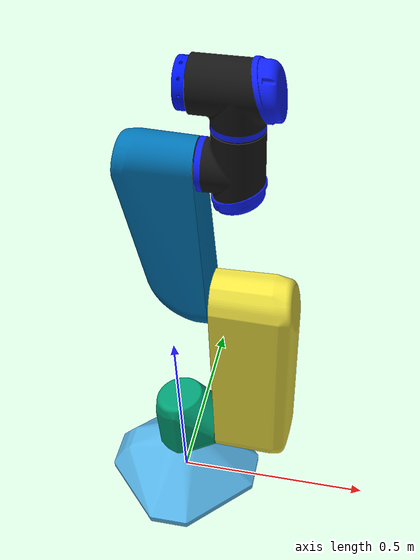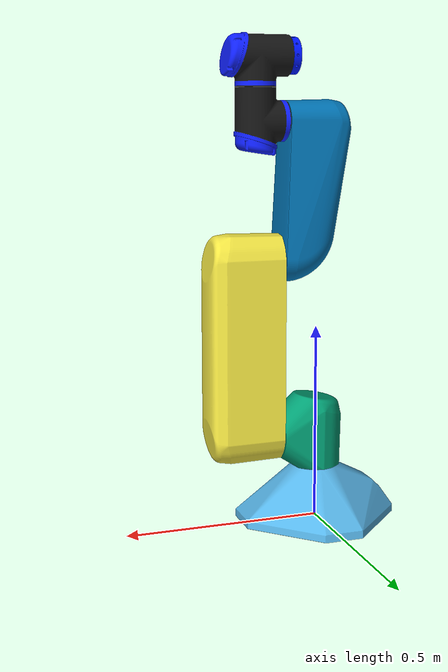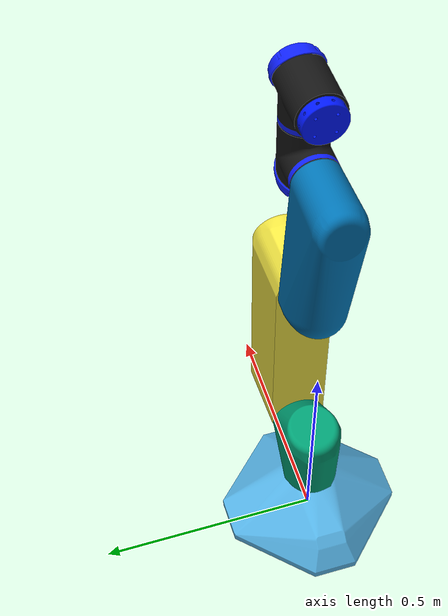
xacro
<?xml version="1.0"?>
<robot xmlns:xacro="http://www.ros.org/wiki/xacro" name="cora">

    <!-- Declare arguments -->
    <xacro:arg name="hardware_type" default="Fake"/>
    <xacro:arg name="gripper_package" default="None"/>
    <xacro:arg name="initial_positions_file" default="initial_positions.yaml"/>

    <!-- Base robot        -->
    <xacro:include filename="$(find cora_description)/urdf/cora.urdf"/>

    <!-- ros2_control      -->

    <!-- Store hardware_type -->
    <xacro:property
        name="hardware_type"
        value="$(arg hardware_type)"/>

    <xacro:if value="${hardware_type != 'Gazebo'}">
        <xacro:include filename="cora.ros2_control.xacro"/>
        <xacro:cora_ros2_control
            name="CoraSystem"
            hardware_type="$(arg hardware_type)"
            initial_positions_file="$(arg initial_positions_file)"/>
    </xacro:if>

    <xacro:if value="${hardware_type == 'Gazebo'}">

        <!-- gazebo ros2 control configuration -->
        <xacro:include filename="cora_gazebo.ros2_control.xacro"/>
        <xacro:cora_gazebo_ros2_control
            initial_positions_file="$(arg initial_positions_file)"/>

        <!-- gazebo sensors and plugins -->
        <xacro:include filename="$(find cora_gazebo)/config/cora_gazebo.xacro"/>
        <xacro:cora_gazebo/>
    </xacro:if>

    <!-- Optional gripper  -->

    <!-- Store gripper package -->
    <xacro:property
        name="gripper_package_name"
        value="$(arg gripper_package)"/>

    <!-- Store gripper package path -->
    <xacro:property
        name="gripper_package_path"
        value="$(find ${gripper_package_name})"/>

    <!-- Only load gripper if one is provided -->
    <xacro:if value="${gripper_package_name != 'None'}">

        <!-- Load gripper macros -->
        <xacro:include filename="${gripper_package_path}/urdf/cora_gripper.urdf.xacro"/>

        <!-- Instantiate gripper -->
        <xacro:cora_gripper_xacro
            hardware_type="$(arg hardware_type)"
            initial_positions_file="$(arg initial_positions_file)"/>

    </xacro:if>
</robot>

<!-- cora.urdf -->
<!--
  Robot: cora
  Generated by: LinkForge v1.2.0
  https://github.com/arounamounchili/linkforge
  Date: 2026-02-19 14:09:21
-->
<robot name="cora">
  <!-- Materials -->
  <material name="baselink_parts_material">
    <color rgba="1 1 1 1" />
  </material>
  <material name="baselink_parts_material_003">
    <color rgba="0.5466 0.5466 0.5466 1" />
  </material>
  <material name="Material_006">
    <color rgba="0.083113 0.083114 0.083114 1" />
  </material>
  <material name="Material_002">
    <color rgba="0.059104 0.128313 1 1" />
  </material>
  <material name="l4_parts_material_002">
    <color rgba="0.082282 0.082283 0.082283 1" />
  </material>
  <material name="l4_parts_material_001">
    <color rgba="0.082282 0.082283 0.082283 1" />
  </material>
  <material name="endeffector_parts_material">
    <color rgba="0 0.093059 1 1" />
  </material>

  <!-- Links -->
  <link name="base_link">
    <inertial>
      <mass value="0" />
      <inertia ixx="0" ixy="0" ixz="0" iyy="0" iyz="0" izz="0" />
    </inertial>
  </link>
  <link name="baselink">
    <visual>
      <origin xyz="0 -0.000004 0.117444" rpy="0 0 0" />
      <geometry>
        <mesh filename="file://$(find cora_description)/meshes/baselink_visual.dae" />
      </geometry>
    </visual>
    <collision>
      <geometry>
        <mesh filename="file://$(find cora_description)/meshes/baselink_collision.stl" />
      </geometry>
    </collision>
    <inertial>
      <origin xyz="0 -0.000004 0.117444" rpy="0 0 0" />
      <mass value="0.24516" />
      <inertia ixx="0.001884" ixy="0" ixz="0.000024" iyy="0.001994" iyz="0" izz="0.00332" />
    </inertial>
  </link>
  <link name="l1">
    <visual>
      <origin xyz="0.019193 0.011081 -0.081454" rpy="3.14159 0.000001 0.523599" />
      <geometry>
        <mesh filename="file://$(find cora_description)/meshes/l1_visual.dae" />
      </geometry>
    </visual>
    <collision>
      <geometry>
        <mesh filename="file://$(find cora_description)/meshes/l1_collision.stl" />
      </geometry>
    </collision>
    <inertial>
      <origin xyz="0.019193 0.011081 -0.081454" rpy="0 0 0" />
      <mass value="0.953925" />
      <inertia ixx="0.003494" ixy="-0.000279" ixz="0.000037" iyy="0.003816" iyz="0.000021" izz="0.002734" />
    </inertial>
  </link>
  <link name="l2">
    <visual>
      <origin xyz="0.199834 0.115375 -0.092245" rpy="0.523599 -1.570788 0" />
      <geometry>
        <mesh filename="file://$(find cora_description)/meshes/l2_visual.dae" />
      </geometry>
    </visual>
    <collision>
      <origin xyz="0 0 0" rpy="0 0 0" />
      <geometry>
        <mesh filename="file://$(find cora_description)/meshes/l2_collision.stl" />
      </geometry>
    </collision>
    <inertial>
      <origin xyz="0.194271 0.112163 -0.082967" rpy="0 0 0" />
      <mass value="2.493" />
      <inertia ixx="0.024841" ixy="-0.02542" ixz="0" iyy="0.054193" iyz="0" izz="0.065129" />
    </inertial>
  </link>
  <link name="l3">
    <visual>
      <origin xyz="-0.000133 -0.334842 -0.09558" rpy="-1.570797 3.141585 -0.000002" />
      <geometry>
        <mesh filename="file://$(find cora_description)/meshes/l3_visual.dae" />
      </geometry>
    </visual>
    <collision>
      <origin xyz="0 0 0" rpy="0 0 0" />
      <geometry>
        <mesh filename="file://$(find cora_description)/meshes/l3_collision.stl" />
      </geometry>
    </collision>
    <inertial>
      <origin xyz="0 -0.171257 -0.079261" rpy="0 0 0" />
      <mass value="0.938652" />
      <inertia ixx="0.014695" ixy="-0.000007" ixz="-0.000001" iyy="0.002658" iyz="-0.001448" izz="0.013731" />
    </inertial>
  </link>
  <link name="l4">
    <visual>
      <origin xyz="-0.000001 -0.00005 -0.074798" rpy="-0.000002 0.000008 0.000002" />
      <geometry>
        <mesh filename="file://$(find cora_description)/meshes/l4_visual.dae" />
      </geometry>
    </visual>
    <collision>
      <origin xyz="0 0 0" rpy="0 0 0" />
      <geometry>
        <mesh filename="file://$(find cora_description)/meshes/l4_collision.stl" />
      </geometry>
    </collision>
    <inertial>
      <origin xyz="0 0.006377 -0.055895" rpy="0 0 0" />
      <mass value="0.380512" />
      <inertia ixx="0.001093" ixy="0" ixz="0" iyy="0.00068" iyz="0.000022" izz="0.00097" />
    </inertial>
  </link>
  <link name="l5">
    <visual>
      <origin xyz="-0.000134 0.00029 -0.075153" rpy="-0.000006 0.000002 -0.000008" />
      <geometry>
        <mesh filename="file://$(find cora_description)/meshes/l5_visual.dae" />
      </geometry>
    </visual>
    <collision>
      <origin xyz="0 0 0" rpy="0 0 0" />
      <geometry>
        <mesh filename="file://$(find cora_description)/meshes/l5_collision.stl" />
      </geometry>
    </collision>
    <inertial>
      <origin xyz="0 0.006377 -0.055895" rpy="0 0 0" />
      <mass value="0.380512" />
      <inertia ixx="0.001093" ixy="0" ixz="0" iyy="0.00068" iyz="0.000022" izz="0.00097" />
    </inertial>
  </link>
  <link name="endeffector">
    <visual>
      <origin xyz="1.17217 0 -0.083" rpy="0 -1.570793 0" />
      <geometry>
        <mesh filename="file://$(find cora_description)/meshes/endeffector_visual.dae" />
      </geometry>
    </visual>
    <collision>
      <origin xyz="1.17217 0 -0.083" rpy="0 -1.570793 0" />
      <geometry>
        <mesh filename="file://$(find cora_description)/meshes/endeffector_collision.stl" />
      </geometry>
    </collision>
    <inertial>
      <mass value="0.05" />
      <inertia ixx="0.000064" ixy="0" ixz="0" iyy="0.000034" iyz="0" izz="0.000034" />
    </inertial>
  </link>

  <!-- Joints -->
  <joint name="base_link_to_baselink" type="fixed">
    <parent link="base_link" />
    <child link="baselink" />
  </joint>
  <joint name="J1" type="revolute">
    <origin xyz="0 0 0.139" rpy="-3.14159 0 0.523599" />
    <parent link="baselink" />
    <child link="l1" />
    <axis xyz="0 0 1" />
    <limit effort="10" velocity="2" lower="-3.14" upper="3.14" />
  </joint>
  <joint name="J2" type="revolute">
    <origin xyz="0.090067 0.052 -0.088" rpy="1.570793 2.094393 -1.047192" />
    <parent link="l1" />
    <child link="l2" />
    <axis xyz="0 0 1" />
    <limit effort="10" velocity="2" lower="-3.14" upper="3.14" />
  </joint>
  <joint name="J3" type="revolute">
    <origin xyz="0.393176 0.227 0.002" rpy="-3.14159 0 -1.0472" />
    <parent link="l2" />
    <child link="l3" />
    <axis xyz="0 0 1" />
    <limit effort="10" velocity="2" lower="-3.14" upper="3.14" />
  </joint>
  <joint name="J4" type="revolute">
    <origin xyz="0 -0.335 -0.013833" rpy="-3.14159 0 0" />
    <parent link="l3" />
    <child link="l4" />
    <axis xyz="0 0 1" />
    <limit effort="10" velocity="2" lower="-3.14" upper="3.14" />
  </joint>
  <joint name="J5" type="revolute">
    <origin xyz="0 0.081167 -0.075" rpy="1.5708 0 0" />
    <parent link="l4" />
    <child link="l5" />
    <axis xyz="0 0 1" />
    <limit effort="10" velocity="2" lower="-3.14" upper="3.14" />
  </joint>
  <joint name="J6" type="revolute">
    <origin xyz="0 0.080167 -0.075" rpy="1.5708 -1.570793 0" />
    <parent link="l5" />
    <child link="endeffector" />
    <axis xyz="0 0 1" />
    <limit effort="10" velocity="2" lower="-3.14" upper="3.14" />
  </joint>
</robot>
